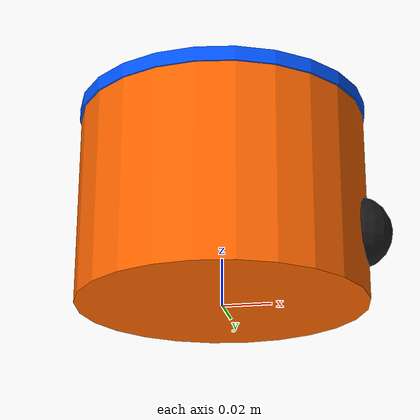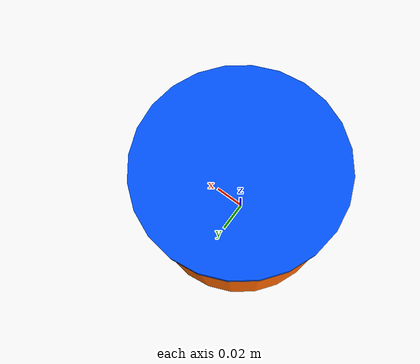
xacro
<?xml version="1.0"?>
<robot xmlns:xacro="http://www.ros.org/wiki/xacro" name="robotino3">

    <!-- Robot parameters - scaled to realistic small robot (radius ~0.06m) -->
    <xacro:arg name="body_radius" default="0.06"/>
    <xacro:arg name="body_height" default="0.08"/>
    <xacro:arg name="body_mass" default="0.5"/>
    <xacro:arg name="bumper_radius" default="0.015"/>
    <xacro:arg name="bumper_mass" default="0.005"/>
    <!-- Bumper is at front of robot, on the edge of the body -->
    <xacro:arg name="bumper_offset" default="0.055"/>

    <xacro:property name="body_radius" value="$(arg body_radius)"/>
    <xacro:property name="body_height" value="$(arg body_height)"/>
    <xacro:property name="body_mass" value="$(arg body_mass)"/>
    <xacro:property name="bumper_radius" value="$(arg bumper_radius)"/>
    <xacro:property name="bumper_mass" value="$(arg bumper_mass)"/>
    <xacro:property name="bumper_offset" value="$(arg bumper_offset)"/>

    <!-- Colors matching Robotino -->
    <material name="robotino_orange">
        <color rgba="1.0 0.4 0.0 1.0"/>
    </material>
    <material name="bumper_black">
        <color rgba="0.1 0.1 0.1 1.0"/>
    </material>
    <material name="marker_blue">
        <color rgba="0.0 0.33 1.0 1.0"/>
    </material>

    <!-- World link (fixed reference) -->
    <link name="world"/>

    <!-- X-axis prismatic joint carrier -->
    <link name="x_carrier">
        <inertial>
            <mass value="0.001"/>
            <inertia ixx="0.0001" ixy="0" ixz="0" iyy="0.0001" iyz="0" izz="0.0001"/>
        </inertial>
    </link>

    <joint name="x_joint" type="prismatic">
        <parent link="world"/>
        <child link="x_carrier"/>
        <origin xyz="0 0 0" rpy="0 0 0"/>
        <axis xyz="1 0 0"/>
        <limit lower="-100" upper="100" effort="1000" velocity="10"/>
        <dynamics damping="0.0" friction="0.0"/>
    </joint>

    <!-- Y-axis prismatic joint carrier -->
    <link name="y_carrier">
        <inertial>
            <mass value="0.001"/>
            <inertia ixx="0.0001" ixy="0" ixz="0" iyy="0.0001" iyz="0" izz="0.0001"/>
        </inertial>
    </link>

    <joint name="y_joint" type="prismatic">
        <parent link="x_carrier"/>
        <child link="y_carrier"/>
        <origin xyz="0 0 0" rpy="0 0 0"/>
        <axis xyz="0 1 0"/>
        <limit lower="-100" upper="100" effort="1000" velocity="10"/>
        <dynamics damping="0.0" friction="0.0"/>
    </joint>

    <!-- Rotation joint carrier -->
    <link name="theta_carrier">
        <inertial>
            <mass value="0.001"/>
            <inertia ixx="0.0001" ixy="0" ixz="0" iyy="0.0001" iyz="0" izz="0.0001"/>
        </inertial>
    </link>

    <joint name="theta_joint" type="continuous">
        <parent link="y_carrier"/>
        <child link="theta_carrier"/>
        <origin xyz="0 0 0" rpy="0 0 0"/>
        <axis xyz="0 0 1"/>
        <limit effort="1000" velocity="10"/>
        <dynamics damping="0.0" friction="0.0"/>
    </joint>

    <!-- Robot body (Robotino cylindrical base) -->
    <link name="base_link">
        <!-- Main cylinder body -->
        <visual>
            <geometry>
                <cylinder radius="${body_radius}" length="${body_height}"/>
            </geometry>
            <origin xyz="0 0 ${body_height/2}" rpy="0 0 0"/>
            <material name="robotino_orange"/>
        </visual>
        <!-- Blue ring marker on top (like Webots OUT_CIRCLE) -->
        <visual>
            <geometry>
                <cylinder radius="${body_radius * 0.88 * 1.15}" length="0.006"/>
            </geometry>
            <origin xyz="0 0 ${body_height + 0.003}" rpy="0 0 0"/>
            <material name="marker_blue"/>
        </visual>
        <collision>
            <geometry>
                <cylinder radius="${body_radius}" length="${body_height}"/>
            </geometry>
            <origin xyz="0 0 ${body_height/2}" rpy="0 0 0"/>
        </collision>
        <inertial>
            <mass value="${body_mass}"/>
            <origin xyz="0 0 ${body_height/2}" rpy="0 0 0"/>
            <!-- Cylinder inertia: Ixx=Iyy=m*(3r^2+h^2)/12, Izz=m*r^2/2 -->
            <inertia
                ixx="${body_mass*(3*body_radius*body_radius + body_height*body_height)/12}"
                ixy="0" ixz="0"
                iyy="${body_mass*(3*body_radius*body_radius + body_height*body_height)/12}"
                iyz="0"
                izz="${body_mass*body_radius*body_radius/2}"/>
        </inertial>
    </link>

    <joint name="base_joint" type="fixed">
        <parent link="theta_carrier"/>
        <child link="base_link"/>
        <origin xyz="0 0 0" rpy="0 0 0"/>
    </joint>

    <!-- Bumper / Contact sensor (sphere at front of robot) -->
    <!-- In Webots: translation -6.6e-06 0.19998 0.08, so roughly at y=0.2, z=0.08 -->
    <!-- After rotation -90deg around z, this becomes x=0.2 in robot frame -->
    <link name="bumper">
        <visual>
            <geometry>
                <sphere radius="${bumper_radius}"/>
            </geometry>
            <material name="bumper_black"/>
        </visual>
        <collision>
            <geometry>
                <sphere radius="${bumper_radius}"/>
            </geometry>
        </collision>
        <inertial>
            <mass value="${bumper_mass}"/>
            <!-- Sphere inertia: I = 2/5 * m * r^2 -->
            <inertia
                ixx="${0.4*bumper_mass*bumper_radius*bumper_radius}"
                ixy="0" ixz="0"
                iyy="${0.4*bumper_mass*bumper_radius*bumper_radius}"
                iyz="0"
                izz="${0.4*bumper_mass*bumper_radius*bumper_radius}"/>
        </inertial>
    </link>

    <!-- Bumper is at the front edge of the robot body -->
    <joint name="bumper_joint" type="fixed">
        <parent link="base_link"/>
        <child link="bumper"/>
        <!-- Position: front of robot (x = body_radius + small gap), at mid-height -->
        <origin xyz="${bumper_offset} 0 ${body_height * 0.35}" rpy="0 0 0"/>
    </joint>

</robot>
